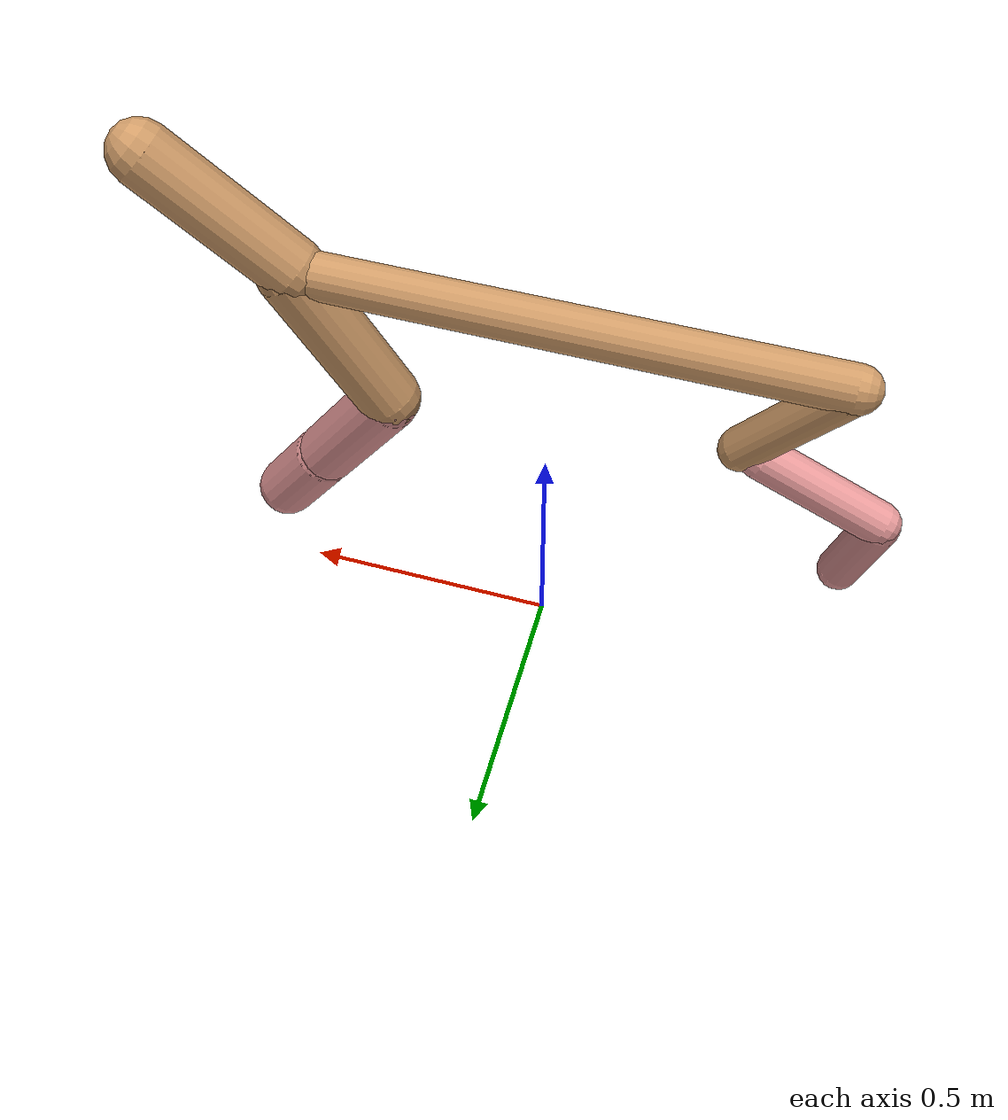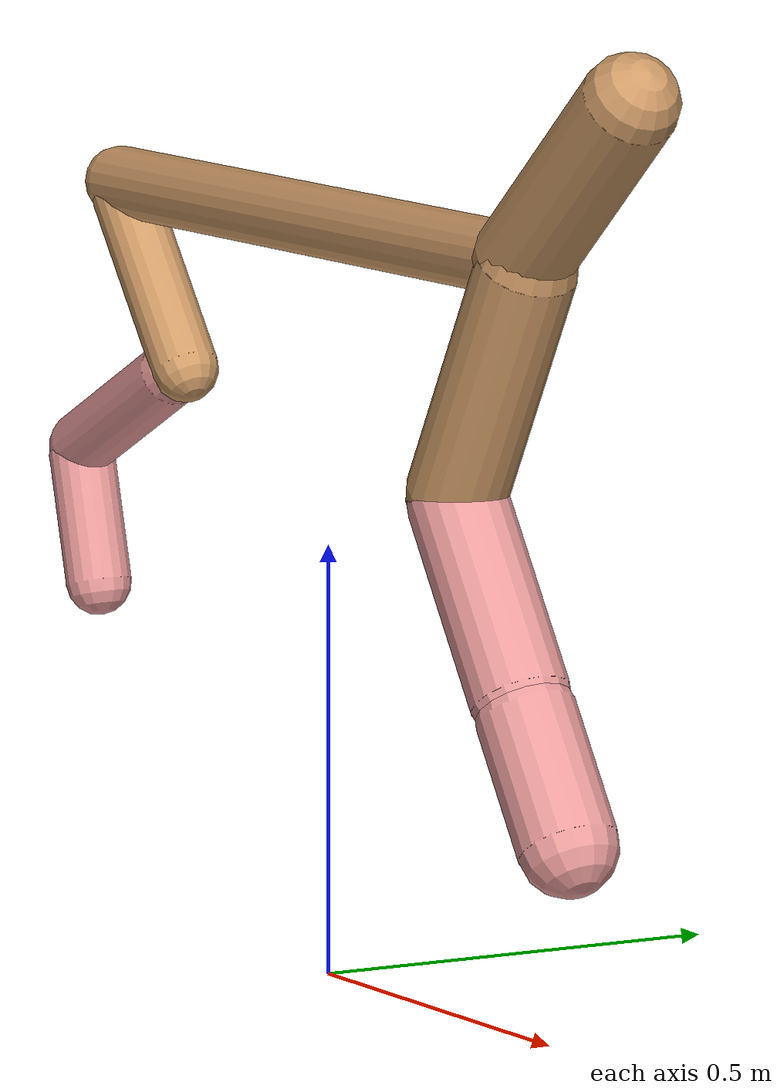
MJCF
<mujoco model="cheetah">
  <compiler angle="radian" coordinate="local" inertiafromgeom="true" settotalmass="14" />
  <default>
    <joint armature=".1" damping=".01" limited="true" solimplimit="0 .8 .03" solreflimit=".02 1" stiffness="8" />
    <geom conaffinity="0" condim="3" contype="1" friction="0.8 .1 .1" rgba="0.8 0.6 .4 1" solimp="0.0 0.8 0.01" solref="0.02 1" />
    <motor ctrllimited="true" ctrlrange="-1 1" />
  </default>
  <size nstack="300000" nuser_geom="1" />
  <option gravity="0 0 -9.81" timestep="0.01" />
  <worldbody>
    <body name="torso" pos="0.0 0.0 0.8715929563039166">
      <joint armature="0" axis="1 0 0" damping="0" limited="false" name="ignorex" pos="0 0 0" stiffness="0" type="slide" />
      <joint armature="0" axis="0 0 1" damping="0" limited="false" name="ignorez" pos="0 0 0" stiffness="0" type="slide" />
      <joint armature="0" axis="0 1 0" damping="0" limited="false" name="ignorey" pos="0 0 0" stiffness="0" type="hinge" />
      <geom fromto="-0.5 0.0 0.0 0.45283965207418164 0.0 0.0" name="torso" size="0.04179445184008477" type="capsule" />
      <geom axisangle="0 1 0 .87" name="head" pos="0.5528396520741816 0.0 0.1" size="0.05628463915163656 0.15" type="capsule" />

      <body name="bthigh" pos="-.5 0 0">
        <joint axis="0 1 0" damping="6" name="bthigh" pos="0 0 0" range="-.52 1.05" stiffness="240" type="hinge" />
        <geom axisangle="0 1 0 -3.8" name="bthigh" pos="0.08534119286707904 0.0 -0.11094355072720274" size="0.03941831641591838 0.12095776870906383" type="capsule" />
        <body name="bshin" pos="0.13068238573415808 0.0 -0.21188710145440548">
          <joint axis="0 1 0" damping="4.5" name="bshin" pos="0 0 0" range="-.785 .785" stiffness="180" type="hinge" />
          <geom axisangle="0 1 0 -2.03" name="bshin" pos="-0.11775445648387349 0.0 -0.058877228241936745" rgba="0.9 0.6 0.6 1" size="0.03941831641591838 0.1251287262507557" type="capsule" />
          <body name="bfoot" pos="-0.23550891296774698 0.0 -0.11775445648387349">
            <joint axis="0 1 0" damping="3" name="bfoot" pos="0 0 0" range="-.4 .785" stiffness="120" type="hinge" />
            <geom axisangle="0 1 0 -.27" name="bfoot" pos="0.025394809425597586 0.0 -0.0821098838094322" rgba="0.9 0.6 0.6 1" size="0.03941831641591838 0.0784140017838069" type="capsule" />
            <inertial mass="10" />
          </body>
        </body>
      </body>
      <body name="fthigh" pos="0.45283965207418164 0.0 0.0">
        <joint axis="0 1 0" damping="4.5" name="fthigh" pos="0 0 0" range="-1.5 0.8" stiffness="180" type="hinge" />
        <geom axisangle="0 1 0 .52" name="fthigh" pos="-0.0820285309718829 0.0 -0.1406203388089421" size="0.05785070023607976 0.1568722418288922" type="capsule" />
        <body name="fshin" pos="-0.1640570619437658 0.0 -0.2812406776178842">
          <joint axis="0 1 0" damping="3" name="fshin" pos="0 0 0" range="-1.2 1.1" stiffness="120" type="hinge" />
          <geom axisangle="0 1 0 -.6" name="fshin" pos="0.07613954166563822 0.0 -0.10542398076780674" rgba="0.9 0.6 0.6 1" size="0.05785070023607976 0.125025997247087" type="capsule" />
          <body name="ffoot" pos="0.15227908333127643 0.0 -0.21084796153561347">
            <joint axis="0 1 0" damping="1.5" name="ffoot" pos="0 0 0" range="-3.1 -0.3" stiffness="60" type="hinge" />
            <geom axisangle="0 1 0 -.6" name="ffoot" pos="0.051794261047707936 0.0 -0.0805688505186568" rgba="0.9 0.6 0.6 1" size="0.05785070023607976 0.0825643378046801" type="capsule" />
            <inertial mass="10" />
          </body>
        </body>
      </body>
    </body>
  </worldbody>
  <actuator>
    <motor gear="120" joint="bthigh" name="bthigh" />
    <motor gear="90" joint="bshin" name="bshin" />
    <motor gear="60" joint="bfoot" name="bfoot" />
    <motor gear="120" joint="fthigh" name="fthigh" />
    <motor gear="60" joint="fshin" name="fshin" />
    <motor gear="30" joint="ffoot" name="ffoot" />
  </actuator>
</mujoco>
